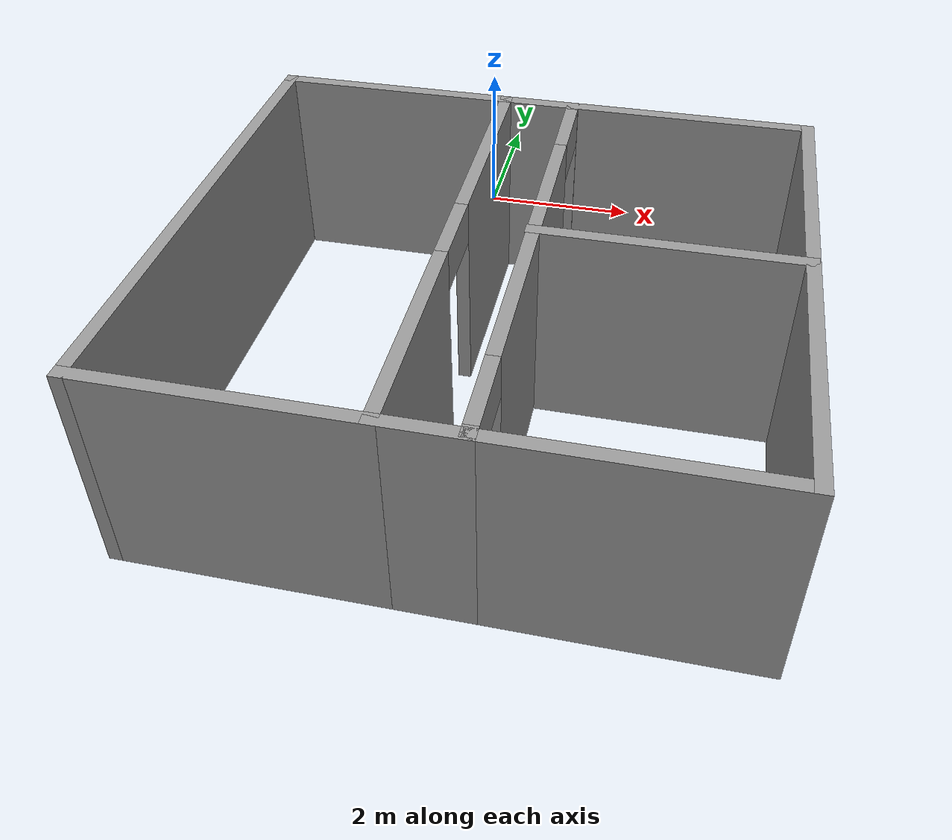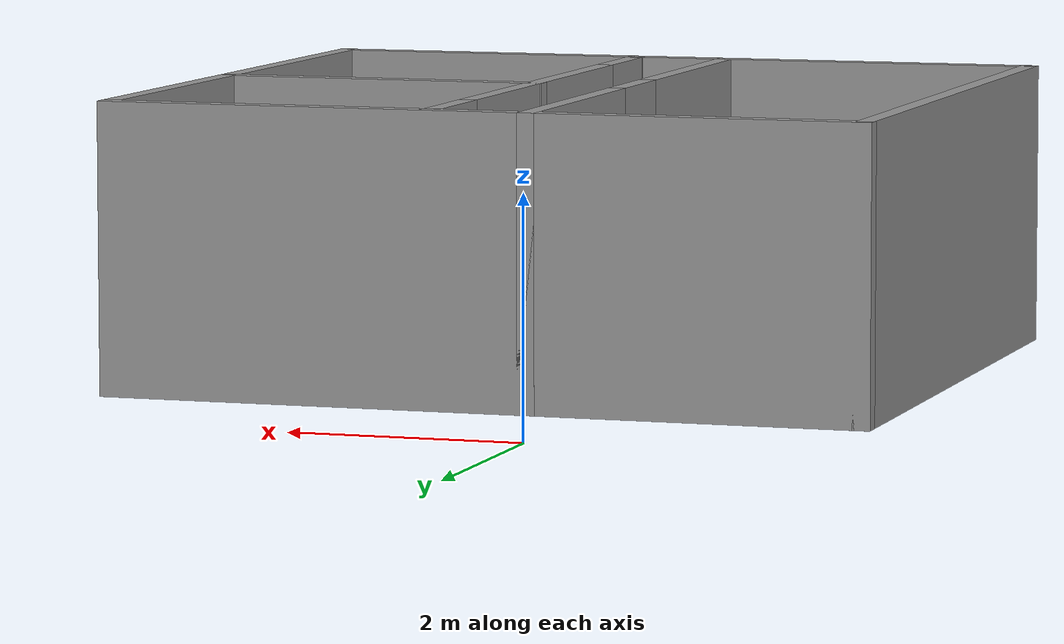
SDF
<?xml version='1.0'?>
<sdf version='1.6'>
  <model name='rooms'>
    <pose frame=''>0.895 -4.475 0 0 -0 0</pose>
    <link name='Wall_1'>
      <collision name='Wall_1_Collision'>
        <geometry>
          <box>
            <size>6 0.15 2.5</size>
          </box>
        </geometry>
        <pose frame=''>0 0 1.25 0 -0 0</pose>
      </collision>
      <visual name='Wall_1_Visual'>
        <pose frame=''>0 0 1.25 0 -0 0</pose>
        <geometry>
          <box>
            <size>6 0.15 2.5</size>
          </box>
        </geometry>
        <material>
          <script>
            <uri>file://media/materials/scripts/gazebo.material</uri>
            <name>Gazebo/Grey</name>
          </script>
          <ambient>1 1 1 1</ambient>
        </material>
      </visual>
      <pose frame=''>3.275 0 0 0 0 -1.5708</pose>
    </link>
    <link name='Wall_15'>
      <collision name='Wall_15_Collision'>
        <geometry>
          <box>
            <size>3 0.15 2.5</size>
          </box>
        </geometry>
        <pose frame=''>0 0 1.25 0 -0 0</pose>
      </collision>
      <visual name='Wall_15_Visual'>
        <pose frame=''>0 0 1.25 0 -0 0</pose>
        <geometry>
          <box>
            <size>3 0.15 2.5</size>
          </box>
        </geometry>
        <material>
          <script>
            <uri>file://media/materials/scripts/gazebo.material</uri>
            <name>Gazebo/Grey</name>
          </script>
          <ambient>1 1 1 1</ambient>
        </material>
      </visual>
      <pose frame=''>1.85 -2.925 0 0 -0 3.14159</pose>
    </link>
    <link name='Wall_17'>
      <pose frame=''>0.425 0 0 0 -0 1.5708</pose>
      <visual name='Wall_17_Visual_0'>
        <pose frame=''>-2.91078 0 1.25 0 -0 0</pose>
        <geometry>
          <box>
            <size>0.178433 0.15 2.5</size>
          </box>
        </geometry>
        <material>
          <script>
            <uri>file://media/materials/scripts/gazebo.material</uri>
            <name>Gazebo/Grey</name>
          </script>
          <ambient>1 1 1 1</ambient>
        </material>
      </visual>
      <collision name='Wall_17_Collision_0'>
        <geometry>
          <box>
            <size>0.178433 0.15 2.5</size>
          </box>
        </geometry>
        <pose frame=''>-2.91078 0 1.25 0 -0 0</pose>
      </collision>
      <visual name='Wall_17_Visual_1'>
        <pose frame=''>0.006241 0 1.25 0 -0 0</pose>
        <geometry>
          <box>
            <size>3.85562 0.15 2.5</size>
          </box>
        </geometry>
        <material>
          <script>
            <uri>file://media/materials/scripts/gazebo.material</uri>
            <name>Gazebo/Grey</name>
          </script>
          <ambient>1 1 1 1</ambient>
        </material>
      </visual>
      <collision name='Wall_17_Collision_1'>
        <geometry>
          <box>
            <size>3.85562 0.15 2.5</size>
          </box>
        </geometry>
        <pose frame=''>0.006241 0 1.25 0 -0 0</pose>
      </collision>
      <visual name='Wall_17_Visual_2'>
        <pose frame=''>2.91702 0 1.25 0 -0 0</pose>
        <geometry>
          <box>
            <size>0.165951 0.15 2.5</size>
          </box>
        </geometry>
        <material>
          <script>
            <uri>file://media/materials/scripts/gazebo.material</uri>
            <name>Gazebo/Grey</name>
          </script>
          <ambient>1 1 1 1</ambient>
        </material>
      </visual>
      <collision name='Wall_17_Collision_2'>
        <geometry>
          <box>
            <size>0.165951 0.15 2.5</size>
          </box>
        </geometry>
        <pose frame=''>2.91702 0 1.25 0 -0 0</pose>
      </collision>
      <visual name='Wall_17_Visual_3'>
        <pose frame=''>-2.37157 0 2.25 0 -0 0</pose>
        <geometry>
          <box>
            <size>0.9 0.15 0.5</size>
          </box>
        </geometry>
        <material>
          <script>
            <uri>file://media/materials/scripts/gazebo.material</uri>
            <name>Gazebo/Grey</name>
          </script>
          <ambient>1 1 1 1</ambient>
        </material>
      </visual>
      <collision name='Wall_17_Collision_3'>
        <geometry>
          <box>
            <size>0.9 0.15 0.5</size>
          </box>
        </geometry>
        <pose frame=''>-2.37157 0 2.25 0 -0 0</pose>
      </collision>
      <visual name='Wall_17_Visual_4'>
        <pose frame=''>2.38405 0 2.25 0 -0 0</pose>
        <geometry>
          <box>
            <size>0.9 0.15 0.5</size>
          </box>
        </geometry>
        <material>
          <script>
            <uri>file://media/materials/scripts/gazebo.material</uri>
            <name>Gazebo/Grey</name>
          </script>
          <ambient>1 1 1 1</ambient>
        </material>
      </visual>
      <collision name='Wall_17_Collision_4'>
        <geometry>
          <box>
            <size>0.9 0.15 0.5</size>
          </box>
        </geometry>
        <pose frame=''>2.38405 0 2.25 0 -0 0</pose>
      </collision>
    </link>
    <link name='Wall_19'>
      <collision name='Wall_19_Collision'>
        <geometry>
          <box>
            <size>1 0.15 2.5</size>
          </box>
        </geometry>
        <pose frame=''>0 0 1.25 0 -0 0</pose>
      </collision>
      <visual name='Wall_19_Visual'>
        <pose frame=''>0 0 1.25 0 -0 0</pose>
        <geometry>
          <box>
            <size>1 0.15 2.5</size>
          </box>
        </geometry>
        <material>
          <script>
            <uri>file://media/materials/scripts/gazebo.material</uri>
            <name>Gazebo/Grey</name>
          </script>
          <ambient>1 1 1 1</ambient>
        </material>
      </visual>
      <pose frame=''>0 -2.925 0 0 -0 3.14159</pose>
    </link>
    <link name='Wall_20'>
      <pose frame=''>-0.425 0 0 0 -0 1.5708</pose>
      <visual name='Wall_20_Visual_0'>
        <pose frame=''>-1.7245 0 1.25 0 -0 0</pose>
        <geometry>
          <box>
            <size>2.551 0.15 2.5</size>
          </box>
        </geometry>
        <material>
          <script>
            <uri>file://media/materials/scripts/gazebo.material</uri>
            <name>Gazebo/Grey</name>
          </script>
          <ambient>1 1 1 1</ambient>
        </material>
      </visual>
      <collision name='Wall_20_Collision_0'>
        <geometry>
          <box>
            <size>2.551 0.15 2.5</size>
          </box>
        </geometry>
        <pose frame=''>-1.7245 0 1.25 0 -0 0</pose>
      </collision>
      <visual name='Wall_20_Visual_1'>
        <pose frame=''>1.7255 0 1.25 0 -0 0</pose>
        <geometry>
          <box>
            <size>2.549 0.15 2.5</size>
          </box>
        </geometry>
        <material>
          <script>
            <uri>file://media/materials/scripts/gazebo.material</uri>
            <name>Gazebo/Grey</name>
          </script>
          <ambient>1 1 1 1</ambient>
        </material>
      </visual>
      <collision name='Wall_20_Collision_1'>
        <geometry>
          <box>
            <size>2.549 0.15 2.5</size>
          </box>
        </geometry>
        <pose frame=''>1.7255 0 1.25 0 -0 0</pose>
      </collision>
      <visual name='Wall_20_Visual_2'>
        <pose frame=''>0.000998 0 2.25 0 -0 0</pose>
        <geometry>
          <box>
            <size>0.9 0.15 0.5</size>
          </box>
        </geometry>
        <material>
          <script>
            <uri>file://media/materials/scripts/gazebo.material</uri>
            <name>Gazebo/Grey</name>
          </script>
          <ambient>1 1 1 1</ambient>
        </material>
      </visual>
      <collision name='Wall_20_Collision_2'>
        <geometry>
          <box>
            <size>0.9 0.15 0.5</size>
          </box>
        </geometry>
        <pose frame=''>0.000998 0 2.25 0 -0 0</pose>
      </collision>
    </link>
    <link name='Wall_22'>
      <collision name='Wall_22_Collision'>
        <geometry>
          <box>
            <size>3 0.15 2.5</size>
          </box>
        </geometry>
        <pose frame=''>0 0 1.25 0 -0 0</pose>
      </collision>
      <visual name='Wall_22_Visual'>
        <pose frame=''>0 0 1.25 0 -0 0</pose>
        <geometry>
          <box>
            <size>3 0.15 2.5</size>
          </box>
        </geometry>
        <material>
          <script>
            <uri>file://media/materials/scripts/gazebo.material</uri>
            <name>Gazebo/Grey</name>
          </script>
          <ambient>1 1 1 1</ambient>
        </material>
      </visual>
      <pose frame=''>-1.85 -2.925 0 0 -0 3.14159</pose>
    </link>
    <link name='Wall_26'>
      <collision name='Wall_26_Collision'>
        <geometry>
          <box>
            <size>3 0.15 2.5</size>
          </box>
        </geometry>
        <pose frame=''>0 0 1.25 0 -0 0</pose>
      </collision>
      <visual name='Wall_26_Visual'>
        <pose frame=''>0 0 1.25 0 -0 0</pose>
        <geometry>
          <box>
            <size>3 0.15 2.5</size>
          </box>
        </geometry>
        <material>
          <script>
            <uri>file://media/materials/scripts/gazebo.material</uri>
            <name>Gazebo/Grey</name>
          </script>
          <ambient>1 1 1 1</ambient>
        </material>
      </visual>
      <pose frame=''>-1.85 2.925 0 0 -0 3.14159</pose>
    </link>
    <link name='Wall_27'>
      <collision name='Wall_27_Collision'>
        <geometry>
          <box>
            <size>6 0.15 2.5</size>
          </box>
        </geometry>
        <pose frame=''>0 0 1.25 0 -0 0</pose>
      </collision>
      <visual name='Wall_27_Visual'>
        <pose frame=''>0 0 1.25 0 -0 0</pose>
        <geometry>
          <box>
            <size>6 0.15 2.5</size>
          </box>
        </geometry>
        <material>
          <script>
            <uri>file://media/materials/scripts/gazebo.material</uri>
            <name>Gazebo/Grey</name>
          </script>
          <ambient>1 1 1 1</ambient>
        </material>
      </visual>
      <pose frame=''>-3.275 0 0 0 0 -1.5708</pose>
    </link>
    <link name='Wall_29'>
      <collision name='Wall_29_Collision'>
        <geometry>
          <box>
            <size>3.85 0.15 2.5</size>
          </box>
        </geometry>
        <pose frame=''>0 0 1.25 0 -0 0</pose>
      </collision>
      <visual name='Wall_29_Visual'>
        <pose frame=''>0 0 1.25 0 -0 0</pose>
        <geometry>
          <box>
            <size>3.85 0.15 2.5</size>
          </box>
        </geometry>
        <material>
          <script>
            <uri>file://media/materials/scripts/gazebo.material</uri>
            <name>Gazebo/Grey</name>
          </script>
          <ambient>1 1 1 1</ambient>
        </material>
      </visual>
      <pose frame=''>1.425 2.925 0 0 -0 0</pose>
    </link>
    <link name='Wall_37'>
      <collision name='Wall_37_Collision'>
        <geometry>
          <box>
            <size>3 0.15 2.5</size>
          </box>
        </geometry>
        <pose frame=''>0 0 1.25 0 -0 0</pose>
      </collision>
      <visual name='Wall_37_Visual'>
        <pose frame=''>0 0 1.25 0 -0 0</pose>
        <geometry>
          <box>
            <size>3 0.15 2.5</size>
          </box>
        </geometry>
        <material>
          <script>
            <uri>file://media/materials/scripts/gazebo.material</uri>
            <name>Gazebo/Grey</name>
          </script>
          <ambient>1 1 1 1</ambient>
        </material>
      </visual>
      <pose frame=''>1.83811 0.137877 0 0 -0 0</pose>
    </link>
    <static>1</static>
  </model>
</sdf>
